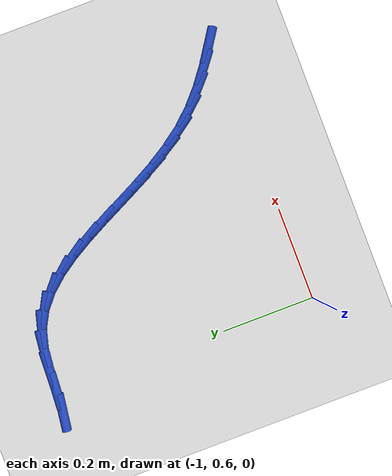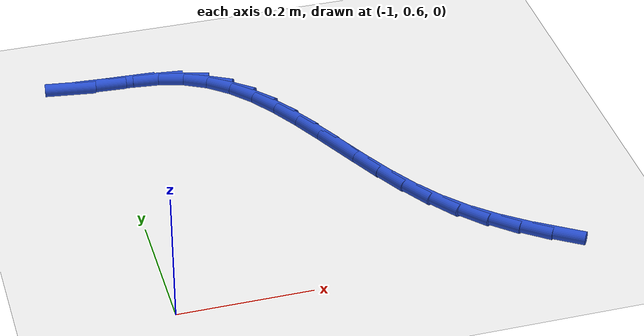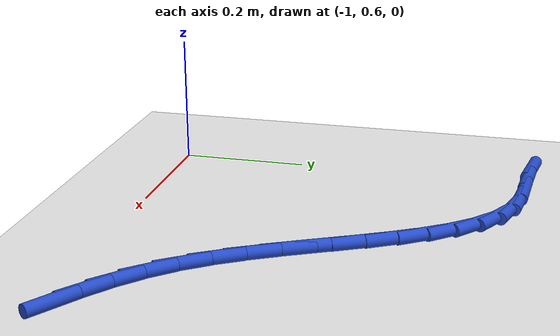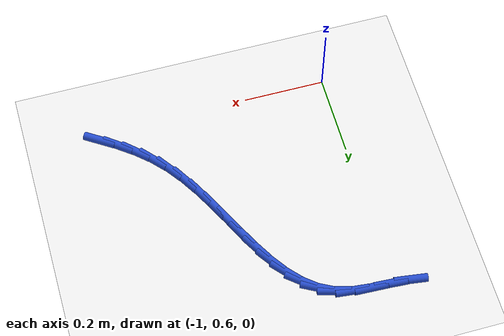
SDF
<sdf version="1.6">
 <world name="default">
  <model name="ground_plane">
   <static>1</static>
   <link name="link">
    <collision name="collision">
     <geometry><plane><normal>0 0 1</normal><size>100 100</size></plane></geometry>
     <surface><friction><ode><mu>100</mu><mu2>50</mu2></ode></friction></surface>
    </collision>
    <visual name="visual">
     <cast_shadows>0</cast_shadows>
     <geometry><plane><normal>0 0 1</normal><size>100 100</size></plane></geometry>
     <material>
      <script><uri>file://media/materials/scripts/gazebo.material</uri><name>Gazebo/WhiteGlow</name></script>
     </material>
    </visual>
   </link>
  </model>
  <model name="line">
   <link name="link_18">
    <pose>-0.4260580609729646 0.6192852814172226 0.01 0 1.57 -0.5822251473659691</pose>
    <collision name="collision">
     <geometry><cylinder><radius>0.01</radius><length>0.08</length></cylinder></geometry>
    </collision>
    <visual name="visual">
     <material>
      <script><name>Gazebo/Blue</name><uri>file://media/materials/scripts/gazebo.material</uri></script>
     </material>
     <geometry><cylinder><radius>0.01</radius><length>0.08</length></cylinder></geometry>
    </visual>
   </link>
   <link name="link_19">
    <pose>-0.4657507901169604 0.6454171237889215 0.01 0 1.57 -0.6505172921722611</pose>
    <collision name="collision">
     <geometry><cylinder><radius>0.01</radius><length>0.08</length></cylinder></geometry>
    </collision>
    <visual name="visual">
     <material>
      <script><name>Gazebo/Blue</name><uri>file://media/materials/scripts/gazebo.material</uri></script>
     </material>
     <geometry><cylinder><radius>0.01</radius><length>0.08</length></cylinder></geometry>
    </visual>
   </link>
   <link name="link_20">
    <pose>-0.5035006412403927 0.6741455517755077 0.01 0 1.57 -0.7375728547880904</pose>
    <collision name="collision">
     <geometry><cylinder><radius>0.01</radius><length>0.08</length></cylinder></geometry>
    </collision>
    <visual name="visual">
     <material>
      <script><name>Gazebo/Blue</name><uri>file://media/materials/scripts/gazebo.material</uri></script>
     </material>
     <geometry><cylinder><radius>0.01</radius><length>0.08</length></cylinder></geometry>
    </visual>
   </link>
   <link name="link_21">
    <pose>-0.5386682737602687 0.7061005729355847 0.01 0 1.57 -0.8422299888736215</pose>
    <collision name="collision">
     <geometry><cylinder><radius>0.01</radius><length>0.08</length></cylinder></geometry>
    </collision>
    <visual name="visual">
     <material>
      <script><name>Gazebo/Blue</name><uri>file://media/materials/scripts/gazebo.material</uri></script>
     </material>
     <geometry><cylinder><radius>0.01</radius><length>0.08</length></cylinder></geometry>
    </visual>
   </link>
   <link name="link_22">
    <pose>-0.5706190970001618 0.7419062742838919 0.01 0 1.57 -0.9472401490970578</pose>
    <collision name="collision">
     <geometry><cylinder><radius>0.01</radius><length>0.08</length></cylinder></geometry>
    </collision>
    <visual name="visual">
     <material>
      <script><name>Gazebo/Blue</name><uri>file://media/materials/scripts/gazebo.material</uri></script>
     </material>
     <geometry><cylinder><radius>0.01</radius><length>0.08</length></cylinder></geometry>
    </visual>
   </link>
   <link name="link_23">
    <pose>-0.5991793371293498 0.7816123554636321 0.01 0 1.57 -1.0257406184039257</pose>
    <collision name="collision">
     <geometry><cylinder><radius>0.01</radius><length>0.08</length></cylinder></geometry>
    </collision>
    <visual name="visual">
     <material>
      <script><name>Gazebo/Blue</name><uri>file://media/materials/scripts/gazebo.material</uri></script>
     </material>
     <geometry><cylinder><radius>0.01</radius><length>0.08</length></cylinder></geometry>
    </visual>
   </link>
   <link name="link_24">
    <pose>-0.6250146577777984 0.8242221952616594 0.01 0 1.57 -1.0776527280225738</pose>
    <collision name="collision">
     <geometry><cylinder><radius>0.01</radius><length>0.08</length></cylinder></geometry>
    </collision>
    <visual name="visual">
     <material>
      <script><name>Gazebo/Blue</name><uri>file://media/materials/scripts/gazebo.material</uri></script>
     </material>
     <geometry><cylinder><radius>0.01</radius><length>0.08</length></cylinder></geometry>
    </visual>
   </link>
   <link name="link_25">
    <pose>-0.6488798445549542 0.8686280859452784 0.01 0 1.57 -1.1053280331876434</pose>
    <collision name="collision">
     <geometry><cylinder><radius>0.01</radius><length>0.08</length></cylinder></geometry>
    </collision>
    <visual name="visual">
     <material>
      <script><name>Gazebo/Blue</name><uri>file://media/materials/scripts/gazebo.material</uri></script>
     </material>
     <geometry><cylinder><radius>0.01</radius><length>0.08</length></cylinder></geometry>
    </visual>
   </link>
   <link name="link_26">
    <pose>-0.6715296830702626 0.9137223197817932 0.01 0 1.57 -1.1098053383089606</pose>
    <collision name="collision">
     <geometry><cylinder><radius>0.01</radius><length>0.08</length></cylinder></geometry>
    </collision>
    <visual name="visual">
     <material>
      <script><name>Gazebo/Blue</name><uri>file://media/materials/scripts/gazebo.material</uri></script>
     </material>
     <geometry><cylinder><radius>0.01</radius><length>0.08</length></cylinder></geometry>
    </visual>
   </link>
   <link name="link_27">
    <pose>-0.6937189589331698 0.9583971890385086 0.01 0 1.57 -1.0904264683494893</pose>
    <collision name="collision">
     <geometry><cylinder><radius>0.01</radius><length>0.08</length></cylinder></geometry>
    </collision>
    <visual name="visual">
     <material>
      <script><name>Gazebo/Blue</name><uri>file://media/materials/scripts/gazebo.material</uri></script>
     </material>
     <geometry><cylinder><radius>0.01</radius><length>0.08</length></cylinder></geometry>
    </visual>
   </link>
   <link name="link_28">
    <pose>-0.7162024577531219 1.0015449859827283 0.01 0 1.57 -1.0445671053917676</pose>
    <collision name="collision">
     <geometry><cylinder><radius>0.01</radius><length>0.08</length></cylinder></geometry>
    </collision>
    <visual name="visual">
     <material>
      <script><name>Gazebo/Blue</name><uri>file://media/materials/scripts/gazebo.material</uri></script>
     </material>
     <geometry><cylinder><radius>0.01</radius><length>0.08</length></cylinder></geometry>
    </visual>
   </link>
   <link name="link_29">
    <pose>-0.7397349651395644 1.0420580028817565 0.01 0 1.57 -0.9674651798101187</pose>
    <collision name="collision">
     <geometry><cylinder><radius>0.01</radius><length>0.08</length></cylinder></geometry>
    </collision>
    <visual name="visual">
     <material>
      <script><name>Gazebo/Blue</name><uri>file://media/materials/scripts/gazebo.material</uri></script>
     </material>
     <geometry><cylinder><radius>0.01</radius><length>0.08</length></cylinder></geometry>
    </visual>
   </link>
   <link name="link_30">
    <pose>-0.7650712667019435 1.0788285320028979 0.01 0 1.57 -0.8525949724966555</pose>
    <collision name="collision">
     <geometry><cylinder><radius>0.01</radius><length>0.08</length></cylinder></geometry>
    </collision>
    <visual name="visual">
     <material>
      <script><name>Gazebo/Blue</name><uri>file://media/materials/scripts/gazebo.material</uri></script>
     </material>
     <geometry><cylinder><radius>0.01</radius><length>0.08</length></cylinder></geometry>
    </visual>
   </link>
   <link name="link_31">
    <pose>-0.7929661480497051 1.1107488656134565 0.01 0 1.57 -0.6938972679533626</pose>
    <collision name="collision">
     <geometry><cylinder><radius>0.01</radius><length>0.08</length></cylinder></geometry>
    </collision>
    <visual name="visual">
     <material>
      <script><name>Gazebo/Blue</name><uri>file://media/materials/scripts/gazebo.material</uri></script>
     </material>
     <geometry><cylinder><radius>0.01</radius><length>0.08</length></cylinder></geometry>
    </visual>
   </link>
   <link name="link_32">
    <pose>-0.8241743947922953 1.1367112959807364 0.01 0 1.57 -0.49178162447629625</pose>
    <collision name="collision">
     <geometry><cylinder><radius>0.01</radius><length>0.08</length></cylinder></geometry>
    </collision>
    <visual name="visual">
     <material>
      <script><name>Gazebo/Blue</name><uri>file://media/materials/scripts/gazebo.material</uri></script>
     </material>
     <geometry><cylinder><radius>0.01</radius><length>0.08</length></cylinder></geometry>
    </visual>
   </link>
   <link name="link_33">
    <pose>-0.8594507925391599 1.1556081153720426 0.01 0 1.57 -0.26612469337725114</pose>
    <collision name="collision">
     <geometry><cylinder><radius>0.01</radius><length>0.08</length></cylinder></geometry>
    </collision>
    <visual name="visual">
     <material>
      <script><name>Gazebo/Blue</name><uri>file://media/materials/scripts/gazebo.material</uri></script>
     </material>
     <geometry><cylinder><radius>0.01</radius><length>0.08</length></cylinder></geometry>
    </visual>
   </link>
   <link name="link_34">
    <pose>-0.8994639942203072 1.1665153319827022 0.01 0 1.57 -0.10421338723054308</pose>
    <collision name="collision">
     <geometry><cylinder><radius>0.01</radius><length>0.08</length></cylinder></geometry>
    </collision>
    <visual name="visual">
     <material>
      <script><name>Gazebo/Blue</name><uri>file://media/materials/scripts/gazebo.material</uri></script>
     </material>
     <geometry><cylinder><radius>0.01</radius><length>0.08</length></cylinder></geometry>
    </visual>
   </link>
   <link name="link_35">
    <pose>-0.9436505728215254 1.1711369079023373 0.01 0 1.57 -0.04269838373388305</pose>
    <collision name="collision">
     <geometry><cylinder><radius>0.01</radius><length>0.08</length></cylinder></geometry>
    </collision>
    <visual name="visual">
     <material>
      <script><name>Gazebo/Blue</name><uri>file://media/materials/scripts/gazebo.material</uri></script>
     </material>
     <geometry><cylinder><radius>0.01</radius><length>0.08</length></cylinder></geometry>
    </visual>
   </link>
   <link name="link_36">
    <pose>-0.9905268410954139 1.17313966605189 0.01 0 1.57 -0.06424378131988522</pose>
    <collision name="collision">
     <geometry><cylinder><radius>0.01</radius><length>0.08</length></cylinder></geometry>
    </collision>
    <visual name="visual">
     <material>
      <script><name>Gazebo/Blue</name><uri>file://media/materials/scripts/gazebo.material</uri></script>
     </material>
     <geometry><cylinder><radius>0.01</radius><length>0.08</length></cylinder></geometry>
    </visual>
   </link>
   <link name="link_37">
    <pose>-1.0385887066114408 1.1762315969385748 0.01 0 1.57 -0.13547735031653296</pose>
    <collision name="collision">
     <geometry><cylinder><radius>0.01</radius><length>0.08</length></cylinder></geometry>
    </collision>
    <visual name="visual">
     <material>
      <script><name>Gazebo/Blue</name><uri>file://media/materials/scripts/gazebo.material</uri></script>
     </material>
     <geometry><cylinder><radius>0.01</radius><length>0.08</length></cylinder></geometry>
    </visual>
   </link>
  </model>
 </world>
</sdf>
